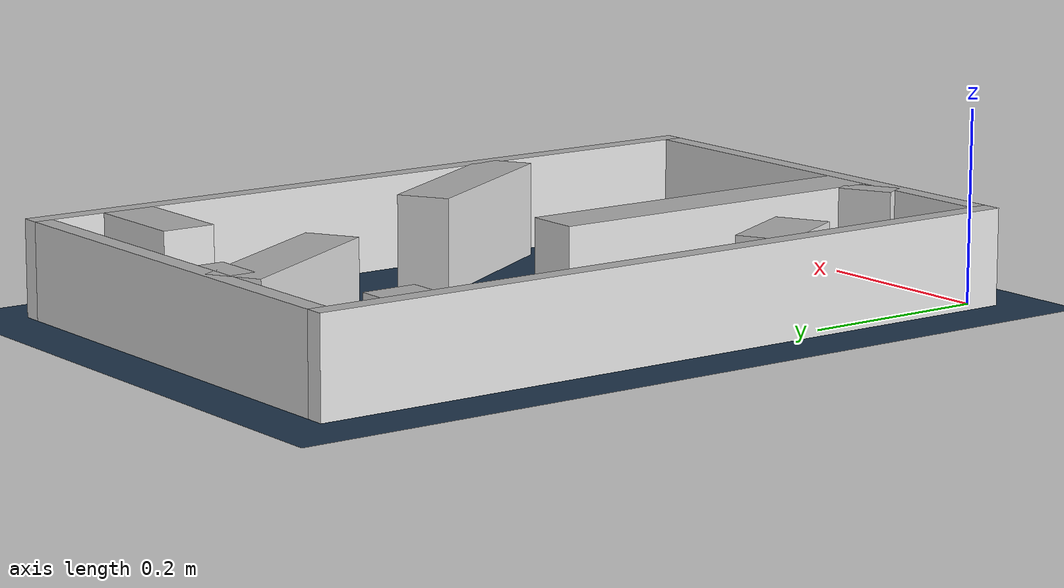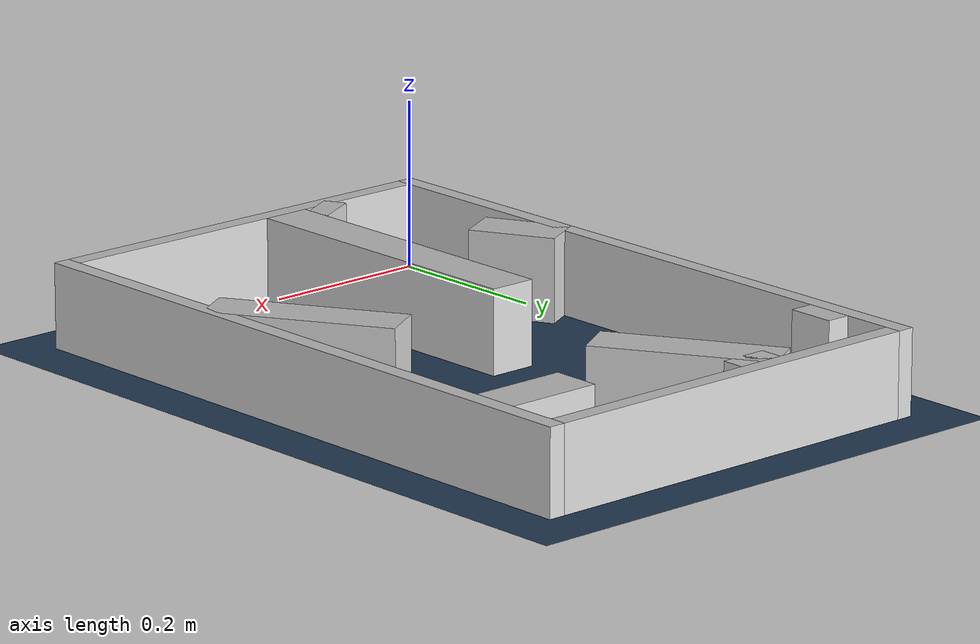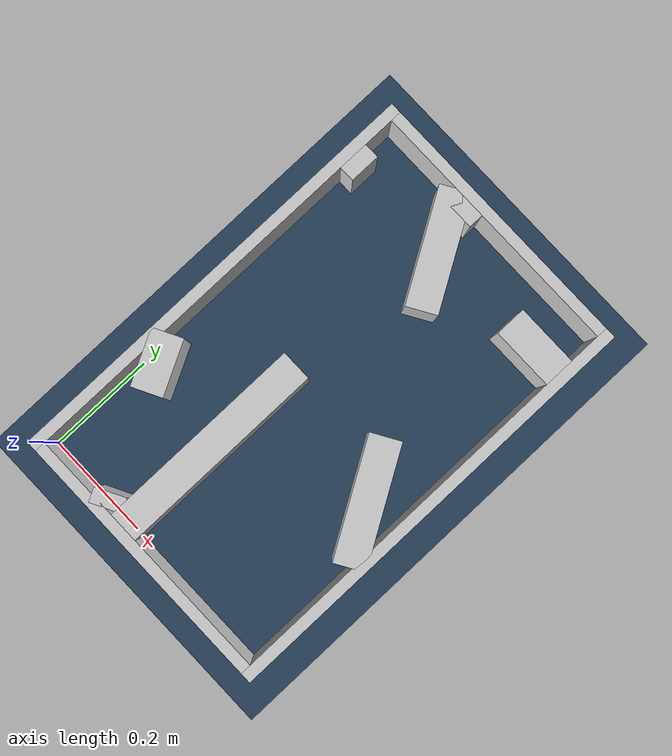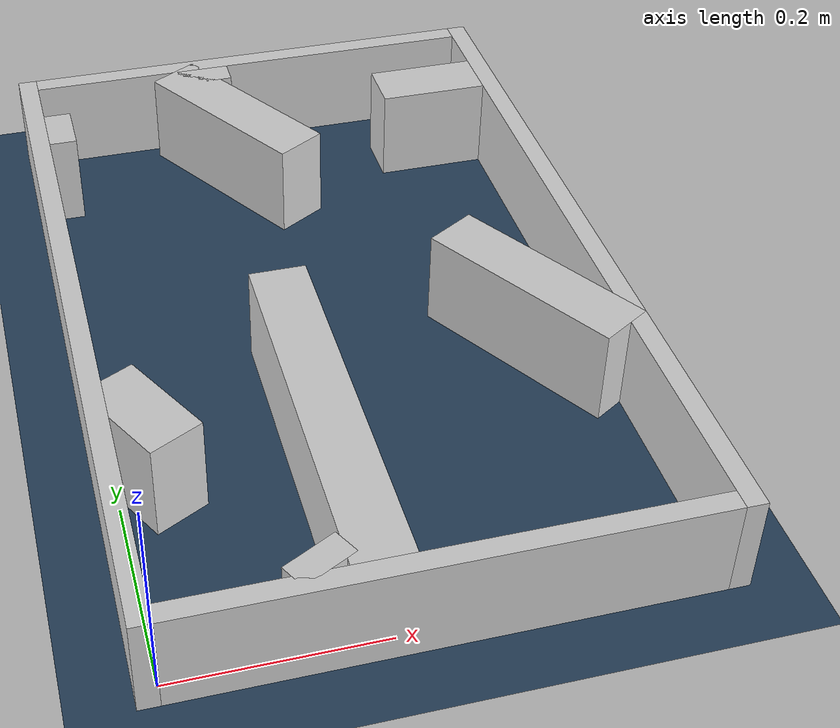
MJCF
<?xml version="1.0" ?>
<mujoco model="generated_real_template">
  <compiler angle="degree"/>
  <option timestep="0.002" integrator="implicitfast" iterations="100" cone="elliptic"/>
  <default>
    <geom density="1"/>
  </default>
  <asset>
    <texture builtin="gradient" height="3072" rgb1="0.3 0.5 0.7" rgb2="0 0 0" type="skybox" width="512"/>
    <texture builtin="checker" height="300" mark="edge" markrgb="0.8 0.8 0.8" name="groundplane" rgb1="0.2 0.3 0.4" rgb2="0.1 0.2 0.3" type="2d" width="300"/>
    <material name="groundplane" reflectance="0.2" texrepeat="5 5" texture="groundplane" texuniform="true"/>
  </asset>
  <worldbody>
    <light dir="0 0 -1" directional="true" pos="0 0 1.5"/>
    <geom name="floor" type="plane" condim="4" friction="0.5 0.005 0.001" material="groundplane" size="0 0 0.05"/>
    <body name="walls">
      <geom name="wall_boundary_left" type="box" condim="4" friction="1.0 0.005 0.0001" rgba="0.8 0.8 0.8 1" pos="-0.010000 0.387500 0.050000" euler="0 0 0.000000" size="0.010000 0.407500 0.050000"/>
      <geom name="wall_boundary_right" type="box" condim="4" friction="1.0 0.005 0.0001" rgba="0.8 0.8 0.8 1" pos="0.500000 0.387500 0.050000" euler="0 0 0.000000" size="0.010000 0.407500 0.050000"/>
      <geom name="wall_boundary_bottom" type="box" condim="4" friction="1.0 0.005 0.0001" rgba="0.8 0.8 0.8 1" pos="0.245000 -0.010000 0.050000" euler="0 0 0.000000" size="0.245000 0.010000 0.050000"/>
      <geom name="wall_boundary_top" type="box" condim="4" friction="1.0 0.005 0.0001" rgba="0.8 0.8 0.8 1" pos="0.245000 0.785000 0.050000" euler="0 0 0.000000" size="0.245000 0.010000 0.050000"/>
      <geom name="wall_inner_1_1" type="box" condim="4" friction="1.0 0.005 0.0001" rgba="0.8 0.8 0.8 1" pos="0.029181 0.222010 0.050000" euler="0 0 -62.483985" size="0.051739 0.028500 0.050000"/>
      <geom name="wall_inner_1_2" type="box" condim="4" friction="1.0 0.005 0.0001" rgba="0.8 0.8 0.8 1" pos="0.138562 0.012034 0.050000" euler="0 0 -62.483985" size="0.013569 0.028500 0.050000"/>
      <geom name="wall_inner_2_1" type="box" condim="4" friction="1.0 0.005 0.0001" rgba="0.8 0.8 0.8 1" pos="0.014333 0.688419 0.050000" euler="0 0 0.000000" size="0.014333 0.028500 0.050000"/>
      <geom name="wall_inner_2_2" type="box" condim="4" friction="1.0 0.005 0.0001" rgba="0.8 0.8 0.8 1" pos="0.432245 0.688419 0.050000" euler="0 0 0.000000" size="0.057755 0.028500 0.050000"/>
      <geom name="wall_inner_3_1" type="box" condim="4" friction="1.0 0.005 0.0001" rgba="0.8 0.8 0.8 1" pos="0.429038 0.316858 0.050000" euler="0 0 120.915654" size="0.109990 0.028500 0.050000"/>
      <geom name="wall_inner_3_2" type="box" condim="4" friction="1.0 0.005 0.0001" rgba="0.8 0.8 0.8 1" pos="0.208732 0.684734 0.050000" euler="0 0 120.915654" size="0.105214 0.028500 0.050000"/>
      <geom name="wall_inner_4_1" type="box" condim="4" friction="1.0 0.005 0.0001" rgba="0.8 0.8 0.8 1" pos="0.188180 0.192326 0.050000" euler="0 0 90.000000" size="0.192326 0.028500 0.050000"/>
      <geom name="wall_inner_4_2" type="box" condim="4" friction="1.0 0.005 0.0001" rgba="0.8 0.8 0.8 1" pos="0.188180 0.761284 0.050000" euler="0 0 90.000000" size="0.013716 0.028500 0.050000"/>
    </body>
  </worldbody>
</mujoco>
